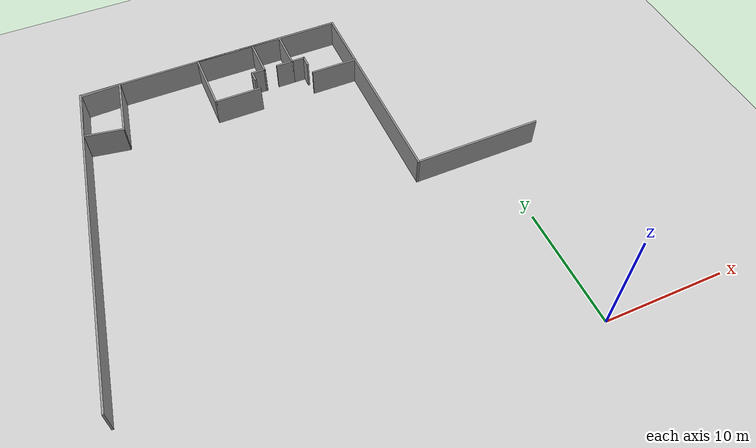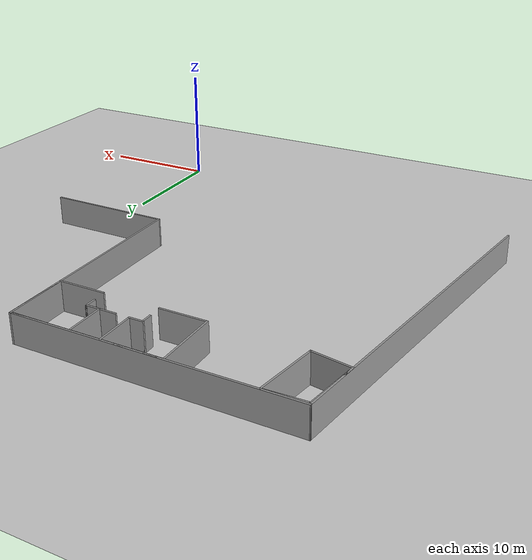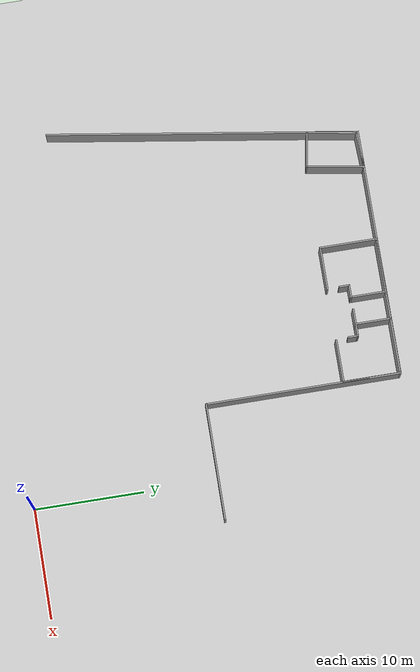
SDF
<sdf version="1.6">
 <world name="default">
  <model name="ground_plane">
   <static>1</static>
   <link name="link">
    <collision name="collision">
     <geometry><plane><normal>0 0 1</normal><size>100 100</size></plane></geometry>
     <surface>
      <contact><collide_bitmask>65535</collide_bitmask></contact>
      <friction><ode><mu>100</mu><mu2>50</mu2></ode></friction>
     </surface>
    </collision>
    <visual name="visual">
     <cast_shadows>0</cast_shadows>
     <geometry><plane><normal>0 0 1</normal><size>100 100</size></plane></geometry>
     <material>
      <script><uri>file://media/materials/scripts/gazebo.material</uri><name>Gazebo/Grey</name></script>
     </material>
    </visual>
   </link>
  </model>
  <model name="LargeRoom">
   <pose>-14.9072 20.476 0 0 -0 0</pose>
   <link name="Wall_55">
    <collision name="Wall_55_Collision">
     <geometry><box><size>10.668 0.15 2.5</size></box></geometry>
     <pose>0 0 1.25 0 -0 0</pose>
    </collision>
    <visual name="Wall_55_Visual">
     <pose>0 0 1.25 0 -0 0</pose>
     <geometry><box><size>10.668 0.15 2.5</size></box></geometry>
     <material>
      <script><uri>file://media/materials/scripts/gazebo.material</uri><name>Gazebo/Grey</name></script>
      <ambient>1 1 1 1</ambient>
     </material>
     <meta><layer>0</layer></meta>
    </visual>
    <pose>13.5062 -3.6737 0 0 -0 3.14155</pose>
   </link>
   <link name="Wall_56">
    <collision name="Wall_56_Collision">
     <geometry><box><size>17.919 0.15 2.5</size></box></geometry>
     <pose>0 0 1.25 0 -0 0</pose>
    </collision>
    <visual name="Wall_56_Visual">
     <pose>0 0 1.25 0 -0 0</pose>
     <geometry><box><size>17.919 0.15 2.5</size></box></geometry>
     <material>
      <script><uri>file://media/materials/scripts/gazebo.material</uri><name>Gazebo/Grey</name></script>
      <ambient>1 1 1 1</ambient>
     </material>
     <meta><layer>0</layer></meta>
    </visual>
    <pose>8.24724 5.211 0 0 -0 1.5708</pose>
   </link>
   <link name="Wall_57">
    <collision name="Wall_57_Collision">
     <geometry><box><size>22.832 0.15 2.5</size></box></geometry>
     <pose>0 0 1.25 0 -0 0</pose>
    </collision>
    <visual name="Wall_57_Visual">
     <pose>0 0 1.25 0 -0 0</pose>
     <geometry><box><size>22.832 0.15 2.5</size></box></geometry>
     <material>
      <script><uri>file://media/materials/scripts/gazebo.material</uri><name>Gazebo/Grey</name></script>
      <ambient>1 1 1 1</ambient>
     </material>
     <meta><layer>0</layer></meta>
    </visual>
    <pose>-3.09375 14.0955 0 0 -0 3.14159</pose>
   </link>
   <link name="Wall_58">
    <collision name="Wall_58_Collision">
     <geometry><box><size>28.67 0.15 2.5</size></box></geometry>
     <pose>0 0 1.25 0 -0 0</pose>
    </collision>
    <visual name="Wall_58_Visual">
     <pose>0 0 1.25 0 -0 0</pose>
     <geometry><box><size>28.67 0.15 2.5</size></box></geometry>
     <material>
      <script><uri>file://media/materials/scripts/gazebo.material</uri><name>Gazebo/Grey</name></script>
      <ambient>1 1 1 1</ambient>
     </material>
     <meta><layer>0</layer></meta>
    </visual>
    <pose>-16.5948 0 0 0 -0 -1.72285</pose>
   </link>
   <static>1</static>
  </model>
  <model name="101A">
   <pose>-28.0293 32.2628 0 0 -0 2.9729</pose>
   <link name="Wall_21">
    <collision name="Wall_21_Collision">
     <geometry><box><size>3.40332 0.15 2.5</size></box></geometry>
     <pose>0 0 1.25 0 -0 0</pose>
    </collision>
    <visual name="Wall_21_Visual">
     <pose>0 0 1.25 0 -0 0</pose>
     <geometry><box><size>3.40332 0.15 2.5</size></box></geometry>
     <material>
      <script><uri>file://media/materials/scripts/gazebo.material</uri><name>Gazebo/Grey</name></script>
      <ambient>1 1 1 1</ambient>
     </material>
     <meta><layer>0</layer></meta>
    </visual>
    <pose>0 -2.25161 0 0 -0 0.2068</pose>
   </link>
   <link name="Wall_22">
    <collision name="Wall_22_Collision">
     <geometry><box><size>4.667 0.15 2.5</size></box></geometry>
     <pose>0 0 1.25 0 -0 0</pose>
    </collision>
    <visual name="Wall_22_Visual">
     <pose>0 0 1.25 0 -0 0</pose>
     <geometry><box><size>4.667 0.15 2.5</size></box></geometry>
     <material>
      <script><uri>file://media/materials/scripts/gazebo.material</uri><name>Gazebo/Grey</name></script>
      <ambient>1 1 1 1</ambient>
     </material>
     <meta><layer>0</layer></meta>
    </visual>
    <pose>1.592 0.340889 0 0 -0 1.5708</pose>
   </link>
   <link name="Wall_23">
    <collision name="Wall_23_Collision">
     <geometry><box><size>3.334 0.15 2.5</size></box></geometry>
     <pose>0 0 1.25 0 -0 0</pose>
    </collision>
    <visual name="Wall_23_Visual">
     <pose>0 0 1.25 0 -0 0</pose>
     <geometry><box><size>3.334 0.15 2.5</size></box></geometry>
     <material>
      <script><uri>file://media/materials/scripts/gazebo.material</uri><name>Gazebo/Grey</name></script>
      <ambient>1 1 1 1</ambient>
     </material>
     <meta><layer>0</layer></meta>
    </visual>
    <pose>0 2.59889 0 0 -0 -3.14128</pose>
   </link>
   <link name="Wall_24">
    <collision name="Wall_24_Collision">
     <geometry><box><size>5.334 0.15 2.5</size></box></geometry>
     <pose>0 0 1.25 0 -0 0</pose>
    </collision>
    <visual name="Wall_24_Visual">
     <pose>0 0 1.25 0 -0 0</pose>
     <geometry><box><size>5.334 0.15 2.5</size></box></geometry>
     <material>
      <script><uri>file://media/materials/scripts/gazebo.material</uri><name>Gazebo/Grey</name></script>
      <ambient>1 1 1 1</ambient>
     </material>
     <meta><layer>0</layer></meta>
    </visual>
    <pose>-1.592 0.006389 0 0 -0 -1.5708</pose>
   </link>
   <static>1</static>
  </model>
  <model name="101Triple">
   <link name="Wall_1">
    <pose>6.259 0 0 0 -0 1.5708</pose>
    <visual name="Wall_1_Visual">
     <pose>0 0 1.25 0 -0 0</pose>
     <geometry><box><size>5.337 0.15 2.5</size></box></geometry>
     <material>
      <script><uri>file://media/materials/scripts/gazebo.material</uri><name>Gazebo/Grey</name></script>
      <ambient>1 1 1 1</ambient>
      <shader type="pixel"/>
     </material>
     <meta><layer>0</layer></meta>
    </visual>
    <collision name="Wall_1_Collision">
     <pose>0 0 1.25 0 -0 0</pose>
     <geometry><box><size>5.337 0.15 2.5</size></box></geometry>
     <surface>
      <friction>
       <ode><mu>1</mu><mu2>1</mu2><fdir1>0 0 0</fdir1><slip1>0</slip1><slip2>0</slip2></ode>
       <torsional>
        <coefficient>1</coefficient>
        <patch_radius>0</patch_radius>
        <surface_radius>0</surface_radius>
        <use_patch_radius>1</use_patch_radius>
        <ode><slip>0</slip></ode>
       </torsional>
      </friction>
      <bounce><restitution_coefficient>0</restitution_coefficient><threshold>1e+06</threshold></bounce>
      <contact>
       <collide_without_contact>0</collide_without_contact>
       <collide_without_contact_bitmask>1</collide_without_contact_bitmask>
       <collide_bitmask>1</collide_bitmask>
       <ode>
        <soft_cfm>0</soft_cfm>
        <soft_erp>0.2</soft_erp>
        <kp>1e+13</kp>
        <kd>1</kd>
        <max_vel>0.01</max_vel>
        <min_depth>0</min_depth>
       </ode>
       <bullet>
        <split_impulse>1</split_impulse>
        <split_impulse_penetration_threshold>-0.01</split_impulse_penetration_threshold>
        <soft_cfm>0</soft_cfm>
        <soft_erp>0.2</soft_erp>
        <kp>1e+13</kp>
        <kd>1</kd>
       </bullet>
      </contact>
     </surface>
    </collision>
   </link>
   <link name="Wall_11">
    <pose>-1.312 0.994499 0 0 0 -1.5708</pose>
    <visual name="Wall_11_Visual">
     <pose>0 0 1.25 0 -0 0</pose>
     <geometry><box><size>3.334 0.15 2.5</size></box></geometry>
     <material>
      <script><uri>file://media/materials/scripts/gazebo.material</uri><name>Gazebo/Grey</name></script>
      <ambient>1 1 1 1</ambient>
      <shader type="pixel"/>
     </material>
     <meta><layer>0</layer></meta>
    </visual>
    <collision name="Wall_11_Collision">
     <pose>0 0 1.25 0 -0 0</pose>
     <geometry><box><size>3.334 0.15 2.5</size></box></geometry>
     <surface>
      <friction>
       <ode><mu>1</mu><mu2>1</mu2><fdir1>0 0 0</fdir1><slip1>0</slip1><slip2>0</slip2></ode>
       <torsional>
        <coefficient>1</coefficient>
        <patch_radius>0</patch_radius>
        <surface_radius>0</surface_radius>
        <use_patch_radius>1</use_patch_radius>
        <ode><slip>0</slip></ode>
       </torsional>
      </friction>
      <bounce><restitution_coefficient>0</restitution_coefficient><threshold>1e+06</threshold></bounce>
      <contact>
       <collide_without_contact>0</collide_without_contact>
       <collide_without_contact_bitmask>1</collide_without_contact_bitmask>
       <collide_bitmask>1</collide_bitmask>
       <ode>
        <soft_cfm>0</soft_cfm>
        <soft_erp>0.2</soft_erp>
        <kp>1e+13</kp>
        <kd>1</kd>
        <max_vel>0.01</max_vel>
        <min_depth>0</min_depth>
       </ode>
       <bullet>
        <split_impulse>1</split_impulse>
        <split_impulse_penetration_threshold>-0.01</split_impulse_penetration_threshold>
        <soft_cfm>0</soft_cfm>
        <soft_erp>0.2</soft_erp>
        <kp>1e+13</kp>
        <kd>1</kd>
       </bullet>
      </contact>
     </surface>
    </collision>
   </link>
   <link name="Wall_14">
    <pose>0.53 -0.5975 0 0 -0 3.14159</pose>
    <visual name="Wall_14_Visual">
     <pose>0 0 1.25 0 -0 0</pose>
     <geometry><box><size>1.5 0.15 2.5</size></box></geometry>
     <material>
      <script><uri>file://media/materials/scripts/gazebo.material</uri><name>Gazebo/Grey</name></script>
      <ambient>1 1 1 1</ambient>
      <shader type="pixel"/>
     </material>
     <meta><layer>0</layer></meta>
    </visual>
    <collision name="Wall_14_Collision">
     <pose>0 0 1.25 0 -0 0</pose>
     <geometry><box><size>1.5 0.15 2.5</size></box></geometry>
     <surface>
      <friction>
       <ode><mu>1</mu><mu2>1</mu2><fdir1>0 0 0</fdir1><slip1>0</slip1><slip2>0</slip2></ode>
       <torsional>
        <coefficient>1</coefficient>
        <patch_radius>0</patch_radius>
        <surface_radius>0</surface_radius>
        <use_patch_radius>1</use_patch_radius>
        <ode><slip>0</slip></ode>
       </torsional>
      </friction>
      <bounce><restitution_coefficient>0</restitution_coefficient><threshold>1e+06</threshold></bounce>
      <contact>
       <collide_without_contact>0</collide_without_contact>
       <collide_without_contact_bitmask>1</collide_without_contact_bitmask>
       <collide_bitmask>1</collide_bitmask>
       <ode>
        <soft_cfm>0</soft_cfm>
        <soft_erp>0.2</soft_erp>
        <kp>1e+13</kp>
        <kd>1</kd>
        <max_vel>0.01</max_vel>
        <min_depth>0</min_depth>
       </ode>
       <bullet>
        <split_impulse>1</split_impulse>
        <split_impulse_penetration_threshold>-0.01</split_impulse_penetration_threshold>
        <soft_cfm>0</soft_cfm>
        <soft_erp>0.2</soft_erp>
        <kp>1e+13</kp>
        <kd>1</kd>
       </bullet>
      </contact>
     </surface>
    </collision>
   </link>
   <link name="Wall_16">
    <pose>-1.862 -0.5975 0 0 -0 3.14159</pose>
    <visual name="Wall_16_Visual">
     <pose>0 0 1.25 0 -0 0</pose>
     <geometry><box><size>1.25 0.15 2.5</size></box></geometry>
     <material>
      <script><uri>file://media/materials/scripts/gazebo.material</uri><name>Gazebo/Grey</name></script>
      <ambient>1 1 1 1</ambient>
      <shader type="pixel"/>
     </material>
     <meta><layer>0</layer></meta>
    </visual>
    <collision name="Wall_16_Collision">
     <pose>0 0 1.25 0 -0 0</pose>
     <geometry><box><size>1.25 0.15 2.5</size></box></geometry>
     <surface>
      <friction>
       <ode><mu>1</mu><mu2>1</mu2><fdir1>0 0 0</fdir1><slip1>0</slip1><slip2>0</slip2></ode>
       <torsional>
        <coefficient>1</coefficient>
        <patch_radius>0</patch_radius>
        <surface_radius>0</surface_radius>
        <use_patch_radius>1</use_patch_radius>
        <ode><slip>0</slip></ode>
       </torsional>
      </friction>
      <bounce><restitution_coefficient>0</restitution_coefficient><threshold>1e+06</threshold></bounce>
      <contact>
       <collide_without_contact>0</collide_without_contact>
       <collide_without_contact_bitmask>1</collide_without_contact_bitmask>
       <collide_bitmask>1</collide_bitmask>
       <ode>
        <soft_cfm>0</soft_cfm>
        <soft_erp>0.2</soft_erp>
        <kp>1e+13</kp>
        <kd>1</kd>
        <max_vel>0.01</max_vel>
        <min_depth>0</min_depth>
       </ode>
       <bullet>
        <split_impulse>1</split_impulse>
        <split_impulse_penetration_threshold>-0.01</split_impulse_penetration_threshold>
        <soft_cfm>0</soft_cfm>
        <soft_erp>0.2</soft_erp>
        <kp>1e+13</kp>
        <kd>1</kd>
       </bullet>
      </contact>
     </surface>
    </collision>
   </link>
   <link name="Wall_17">
    <pose>-2.412 -1.0225 0 0 0 -1.5708</pose>
    <visual name="Wall_17_Visual">
     <pose>0 0 1.25 0 -0 0</pose>
     <geometry><box><size>1 0.15 2.5</size></box></geometry>
     <material>
      <script><uri>file://media/materials/scripts/gazebo.material</uri><name>Gazebo/Grey</name></script>
      <ambient>1 1 1 1</ambient>
      <shader type="pixel"/>
     </material>
     <meta><layer>0</layer></meta>
    </visual>
    <collision name="Wall_17_Collision">
     <pose>0 0 1.25 0 -0 0</pose>
     <geometry><box><size>1 0.15 2.5</size></box></geometry>
     <surface>
      <friction>
       <ode><mu>1</mu><mu2>1</mu2><fdir1>0 0 0</fdir1><slip1>0</slip1><slip2>0</slip2></ode>
       <torsional>
        <coefficient>1</coefficient>
        <patch_radius>0</patch_radius>
        <surface_radius>0</surface_radius>
        <use_patch_radius>1</use_patch_radius>
        <ode><slip>0</slip></ode>
       </torsional>
      </friction>
      <bounce><restitution_coefficient>0</restitution_coefficient><threshold>1e+06</threshold></bounce>
      <contact>
       <collide_without_contact>0</collide_without_contact>
       <collide_without_contact_bitmask>1</collide_without_contact_bitmask>
       <collide_bitmask>1</collide_bitmask>
       <ode>
        <soft_cfm>0</soft_cfm>
        <soft_erp>0.2</soft_erp>
        <kp>1e+13</kp>
        <kd>1</kd>
        <max_vel>0.01</max_vel>
        <min_depth>0</min_depth>
       </ode>
       <bullet>
        <split_impulse>1</split_impulse>
        <split_impulse_penetration_threshold>-0.01</split_impulse_penetration_threshold>
        <soft_cfm>0</soft_cfm>
        <soft_erp>0.2</soft_erp>
        <kp>1e+13</kp>
        <kd>1</kd>
       </bullet>
      </contact>
     </surface>
    </collision>
   </link>
   <link name="Wall_19">
    <pose>1.755 -0.5975 0 0 -0 0</pose>
    <visual name="Wall_19_Visual">
     <pose>0 0 1.25 0 -0 0</pose>
     <geometry><box><size>1.25 0.15 2.5</size></box></geometry>
     <material>
      <script><uri>file://media/materials/scripts/gazebo.material</uri><name>Gazebo/Grey</name></script>
      <ambient>1 1 1 1</ambient>
      <shader type="pixel"/>
     </material>
     <meta><layer>0</layer></meta>
    </visual>
    <collision name="Wall_19_Collision">
     <pose>0 0 1.25 0 -0 0</pose>
     <geometry><box><size>1.25 0.15 2.5</size></box></geometry>
     <surface>
      <friction>
       <ode><mu>1</mu><mu2>1</mu2><fdir1>0 0 0</fdir1><slip1>0</slip1><slip2>0</slip2></ode>
       <torsional>
        <coefficient>1</coefficient>
        <patch_radius>0</patch_radius>
        <surface_radius>0</surface_radius>
        <use_patch_radius>1</use_patch_radius>
        <ode><slip>0</slip></ode>
       </torsional>
      </friction>
      <bounce><restitution_coefficient>0</restitution_coefficient><threshold>1e+06</threshold></bounce>
      <contact>
       <collide_without_contact>0</collide_without_contact>
       <collide_without_contact_bitmask>1</collide_without_contact_bitmask>
       <collide_bitmask>1</collide_bitmask>
       <ode>
        <soft_cfm>0</soft_cfm>
        <soft_erp>0.2</soft_erp>
        <kp>1e+13</kp>
        <kd>1</kd>
        <max_vel>0.01</max_vel>
        <min_depth>0</min_depth>
       </ode>
       <bullet>
        <split_impulse>1</split_impulse>
        <split_impulse_penetration_threshold>-0.01</split_impulse_penetration_threshold>
        <soft_cfm>0</soft_cfm>
        <soft_erp>0.2</soft_erp>
        <kp>1e+13</kp>
        <kd>1</kd>
       </bullet>
      </contact>
     </surface>
    </collision>
   </link>
   <link name="Wall_2">
    <pose>0 2.5935 0 0 -0 3.14159</pose>
    <visual name="Wall_2_Visual">
     <pose>0 0 1.25 0 -0 0</pose>
     <geometry><box><size>12.668 0.15 2.5</size></box></geometry>
     <material>
      <script><uri>file://media/materials/scripts/gazebo.material</uri><name>Gazebo/Grey</name></script>
      <ambient>1 1 1 1</ambient>
      <shader type="pixel"/>
     </material>
     <meta><layer>0</layer></meta>
    </visual>
    <collision name="Wall_2_Collision">
     <pose>0 0 1.25 0 -0 0</pose>
     <geometry><box><size>12.668 0.15 2.5</size></box></geometry>
     <surface>
      <friction>
       <ode><mu>1</mu><mu2>1</mu2><fdir1>0 0 0</fdir1><slip1>0</slip1><slip2>0</slip2></ode>
       <torsional>
        <coefficient>1</coefficient>
        <patch_radius>0</patch_radius>
        <surface_radius>0</surface_radius>
        <use_patch_radius>1</use_patch_radius>
        <ode><slip>0</slip></ode>
       </torsional>
      </friction>
      <bounce><restitution_coefficient>0</restitution_coefficient><threshold>1e+06</threshold></bounce>
      <contact>
       <collide_without_contact>0</collide_without_contact>
       <collide_without_contact_bitmask>1</collide_without_contact_bitmask>
       <collide_bitmask>1</collide_bitmask>
       <ode>
        <soft_cfm>0</soft_cfm>
        <soft_erp>0.2</soft_erp>
        <kp>1e+13</kp>
        <kd>1</kd>
        <max_vel>0.01</max_vel>
        <min_depth>0</min_depth>
       </ode>
       <bullet>
        <split_impulse>1</split_impulse>
        <split_impulse_penetration_threshold>-0.01</split_impulse_penetration_threshold>
        <soft_cfm>0</soft_cfm>
        <soft_erp>0.2</soft_erp>
        <kp>1e+13</kp>
        <kd>1</kd>
       </bullet>
      </contact>
     </surface>
    </collision>
   </link>
   <link name="Wall_20">
    <pose>2.305 -1.0225 0 0 0 -1.5708</pose>
    <visual name="Wall_20_Visual">
     <pose>0 0 1.25 0 -0 0</pose>
     <geometry><box><size>1 0.15 2.5</size></box></geometry>
     <material>
      <script><uri>file://media/materials/scripts/gazebo.material</uri><name>Gazebo/Grey</name></script>
      <ambient>1 1 1 1</ambient>
      <shader type="pixel"/>
     </material>
     <meta><layer>0</layer></meta>
    </visual>
    <collision name="Wall_20_Collision">
     <pose>0 0 1.25 0 -0 0</pose>
     <geometry><box><size>1 0.15 2.5</size></box></geometry>
     <surface>
      <friction>
       <ode><mu>1</mu><mu2>1</mu2><fdir1>0 0 0</fdir1><slip1>0</slip1><slip2>0</slip2></ode>
       <torsional>
        <coefficient>1</coefficient>
        <patch_radius>0</patch_radius>
        <surface_radius>0</surface_radius>
        <use_patch_radius>1</use_patch_radius>
        <ode><slip>0</slip></ode>
       </torsional>
      </friction>
      <bounce><restitution_coefficient>0</restitution_coefficient><threshold>1e+06</threshold></bounce>
      <contact>
       <collide_without_contact>0</collide_without_contact>
       <collide_without_contact_bitmask>1</collide_without_contact_bitmask>
       <collide_bitmask>1</collide_bitmask>
       <ode>
        <soft_cfm>0</soft_cfm>
        <soft_erp>0.2</soft_erp>
        <kp>1e+13</kp>
        <kd>1</kd>
        <max_vel>0.01</max_vel>
        <min_depth>0</min_depth>
       </ode>
       <bullet>
        <split_impulse>1</split_impulse>
        <split_impulse_penetration_threshold>-0.01</split_impulse_penetration_threshold>
        <soft_cfm>0</soft_cfm>
        <soft_erp>0.2</soft_erp>
        <kp>1e+13</kp>
        <kd>1</kd>
       </bullet>
      </contact>
     </surface>
    </collision>
   </link>
   <link name="Wall_3">
    <pose>-6.259 0 0 0 0 -1.5708</pose>
    <visual name="Wall_3_Visual">
     <pose>0 0 1.25 0 -0 0</pose>
     <geometry><box><size>5.337 0.15 2.5</size></box></geometry>
     <material>
      <script><uri>file://media/materials/scripts/gazebo.material</uri><name>Gazebo/Grey</name></script>
      <ambient>1 1 1 1</ambient>
      <shader type="pixel"/>
     </material>
     <meta><layer>0</layer></meta>
    </visual>
    <collision name="Wall_3_Collision">
     <pose>0 0 1.25 0 -0 0</pose>
     <geometry><box><size>5.337 0.15 2.5</size></box></geometry>
     <surface>
      <friction>
       <ode><mu>1</mu><mu2>1</mu2><fdir1>0 0 0</fdir1><slip1>0</slip1><slip2>0</slip2></ode>
       <torsional>
        <coefficient>1</coefficient>
        <patch_radius>0</patch_radius>
        <surface_radius>0</surface_radius>
        <use_patch_radius>1</use_patch_radius>
        <ode><slip>0</slip></ode>
       </torsional>
      </friction>
      <bounce><restitution_coefficient>0</restitution_coefficient><threshold>1e+06</threshold></bounce>
      <contact>
       <collide_without_contact>0</collide_without_contact>
       <collide_without_contact_bitmask>1</collide_without_contact_bitmask>
       <collide_bitmask>1</collide_bitmask>
       <ode>
        <soft_cfm>0</soft_cfm>
        <soft_erp>0.2</soft_erp>
        <kp>1e+13</kp>
        <kd>1</kd>
        <max_vel>0.01</max_vel>
        <min_depth>0</min_depth>
       </ode>
       <bullet>
        <split_impulse>1</split_impulse>
        <split_impulse_penetration_threshold>-0.01</split_impulse_penetration_threshold>
        <soft_cfm>0</soft_cfm>
        <soft_erp>0.2</soft_erp>
        <kp>1e+13</kp>
        <kd>1</kd>
       </bullet>
      </contact>
     </surface>
    </collision>
   </link>
   <link name="Wall_5">
    <pose>4.334 -2.5935 0 0 -0 3.14159</pose>
    <visual name="Wall_5_Visual">
     <pose>0 0 1.25 0 -0 0</pose>
     <geometry><box><size>4 0.15 2.5</size></box></geometry>
     <material>
      <script><uri>file://media/materials/scripts/gazebo.material</uri><name>Gazebo/Grey</name></script>
      <ambient>1 1 1 1</ambient>
      <shader type="pixel"/>
     </material>
     <meta><layer>0</layer></meta>
    </visual>
    <collision name="Wall_5_Collision">
     <pose>0 0 1.25 0 -0 0</pose>
     <geometry><box><size>4 0.15 2.5</size></box></geometry>
     <surface>
      <friction>
       <ode><mu>1</mu><mu2>1</mu2><fdir1>0 0 0</fdir1><slip1>0</slip1><slip2>0</slip2></ode>
       <torsional>
        <coefficient>1</coefficient>
        <patch_radius>0</patch_radius>
        <surface_radius>0</surface_radius>
        <use_patch_radius>1</use_patch_radius>
        <ode><slip>0</slip></ode>
       </torsional>
      </friction>
      <bounce><restitution_coefficient>0</restitution_coefficient><threshold>1e+06</threshold></bounce>
      <contact>
       <collide_without_contact>0</collide_without_contact>
       <collide_without_contact_bitmask>1</collide_without_contact_bitmask>
       <collide_bitmask>1</collide_bitmask>
       <ode>
        <soft_cfm>0</soft_cfm>
        <soft_erp>0.2</soft_erp>
        <kp>1e+13</kp>
        <kd>1</kd>
        <max_vel>0.01</max_vel>
        <min_depth>0</min_depth>
       </ode>
       <bullet>
        <split_impulse>1</split_impulse>
        <split_impulse_penetration_threshold>-0.01</split_impulse_penetration_threshold>
        <soft_cfm>0</soft_cfm>
        <soft_erp>0.2</soft_erp>
        <kp>1e+13</kp>
        <kd>1</kd>
       </bullet>
      </contact>
     </surface>
    </collision>
   </link>
   <link name="Wall_7">
    <pose>-4.334 -2.5935 0 0 -0 0</pose>
    <visual name="Wall_7_Visual">
     <pose>0 0 1.25 0 -0 0</pose>
     <geometry><box><size>4 0.15 2.5</size></box></geometry>
     <material>
      <script><uri>file://media/materials/scripts/gazebo.material</uri><name>Gazebo/Grey</name></script>
      <ambient>1 1 1 1</ambient>
      <shader type="pixel"/>
     </material>
     <meta><layer>0</layer></meta>
    </visual>
    <collision name="Wall_7_Collision">
     <pose>0 0 1.25 0 -0 0</pose>
     <geometry><box><size>4 0.15 2.5</size></box></geometry>
     <surface>
      <friction>
       <ode><mu>1</mu><mu2>1</mu2><fdir1>0 0 0</fdir1><slip1>0</slip1><slip2>0</slip2></ode>
       <torsional>
        <coefficient>1</coefficient>
        <patch_radius>0</patch_radius>
        <surface_radius>0</surface_radius>
        <use_patch_radius>1</use_patch_radius>
        <ode><slip>0</slip></ode>
       </torsional>
      </friction>
      <bounce><restitution_coefficient>0</restitution_coefficient><threshold>1e+06</threshold></bounce>
      <contact>
       <collide_without_contact>0</collide_without_contact>
       <collide_without_contact_bitmask>1</collide_without_contact_bitmask>
       <collide_bitmask>1</collide_bitmask>
       <ode>
        <soft_cfm>0</soft_cfm>
        <soft_erp>0.2</soft_erp>
        <kp>1e+13</kp>
        <kd>1</kd>
        <max_vel>0.01</max_vel>
        <min_depth>0</min_depth>
       </ode>
       <bullet>
        <split_impulse>1</split_impulse>
        <split_impulse_penetration_threshold>-0.01</split_impulse_penetration_threshold>
        <soft_cfm>0</soft_cfm>
        <soft_erp>0.2</soft_erp>
        <kp>1e+13</kp>
        <kd>1</kd>
       </bullet>
      </contact>
     </surface>
    </collision>
   </link>
   <link name="Wall_9">
    <pose>1.205 0.994499 0 0 0 -1.5708</pose>
    <visual name="Wall_9_Visual">
     <pose>0 0 1.25 0 -0 0</pose>
     <geometry><box><size>3.334 0.15 2.5</size></box></geometry>
     <material>
      <script><uri>file://media/materials/scripts/gazebo.material</uri><name>Gazebo/Grey</name></script>
      <ambient>1 1 1 1</ambient>
      <shader type="pixel"/>
     </material>
     <meta><layer>0</layer></meta>
    </visual>
    <collision name="Wall_9_Collision">
     <pose>0 0 1.25 0 -0 0</pose>
     <geometry><box><size>3.334 0.15 2.5</size></box></geometry>
     <surface>
      <friction>
       <ode><mu>1</mu><mu2>1</mu2><fdir1>0 0 0</fdir1><slip1>0</slip1><slip2>0</slip2></ode>
       <torsional>
        <coefficient>1</coefficient>
        <patch_radius>0</patch_radius>
        <surface_radius>0</surface_radius>
        <use_patch_radius>1</use_patch_radius>
        <ode><slip>0</slip></ode>
       </torsional>
      </friction>
      <bounce><restitution_coefficient>0</restitution_coefficient><threshold>1e+06</threshold></bounce>
      <contact>
       <collide_without_contact>0</collide_without_contact>
       <collide_without_contact_bitmask>1</collide_without_contact_bitmask>
       <collide_bitmask>1</collide_bitmask>
       <ode>
        <soft_cfm>0</soft_cfm>
        <soft_erp>0.2</soft_erp>
        <kp>1e+13</kp>
        <kd>1</kd>
        <max_vel>0.01</max_vel>
        <min_depth>0</min_depth>
       </ode>
       <bullet>
        <split_impulse>1</split_impulse>
        <split_impulse_penetration_threshold>-0.01</split_impulse_penetration_threshold>
        <soft_cfm>0</soft_cfm>
        <soft_erp>0.2</soft_erp>
        <kp>1e+13</kp>
        <kd>1</kd>
       </bullet>
      </contact>
     </surface>
    </collision>
   </link>
   <static>1</static>
   <pose>-12.9377 31.9553 0 0 -0 0</pose>
  </model>
 </world>
</sdf>
